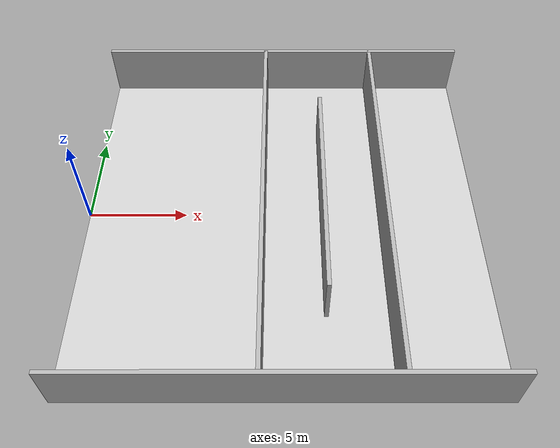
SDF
<sdf version='1.9'>
  <world name='car_world'>
    <physics name='1ms' type='ignored'>
      <max_step_size>0.001</max_step_size>
      <real_time_factor>1</real_time_factor>
      <real_time_update_rate>1000</real_time_update_rate>
    </physics>
    <plugin name='ignition::gazebo::systems::Physics' filename='libignition-gazebo-physics-system.so'/>
    <plugin name='ignition::gazebo::systems::Sensors' filename='libignition-gazebo-sensors-system.so'>
      <render_engine>ogre2</render_engine>
    </plugin>
    <plugin name='ignition::gazebo::systems::SceneBroadcaster' filename='libignition-gazebo-scene-broadcaster-system.so'/>
    <plugin name='ignition::gazebo::systems::UserCommands' filename='ignition-gazebo-user-commands-system'/>
    <gravity>0 0 -9.8</gravity>
    <magnetic_field>6e-06 2.3e-05 -4.2e-05</magnetic_field>
    <atmosphere type='adiabatic'/>
    <scene>
      <ambient>0.4 0.4 0.4 1</ambient>
      <background>0.7 0.7 0.7 1</background>
      <shadows>true</shadows>
    </scene>
    <model name='ground_plane'>
      <static>true</static>
      <link name='link'>
        <pose>10 0 0 0 -0 0</pose>
        <collision name='collision'>
          <geometry>
            <box>
              <size>20 20 0.1</size>
            </box>
          </geometry>
          <surface>
            <friction>
              <ode/>
            </friction>
            <bounce/>
            <contact/>
          </surface>
        </collision>
        <visual name='visual'>
          <geometry>
            <box>
              <size>20 20 0.1</size>
            </box>
          </geometry>
          <material>
            <ambient>0.8 0.8 0.8 1</ambient>
            <diffuse>0.8 0.8 0.8 1</diffuse>
            <specular>0.8 0.8 0.8 1</specular>
          </material>
        </visual>
        <pose>0 0 0 0 -0 0</pose>
        <inertial>
          <pose>0 0 0 0 -0 0</pose>
          <mass>1</mass>
          <inertia>
            <ixx>1</ixx>
            <ixy>0</ixy>
            <ixz>0</ixz>
            <iyy>1</iyy>
            <iyz>0</iyz>
            <izz>1</izz>
          </inertia>
        </inertial>
        <enable_wind>false</enable_wind>
      </link>
      <pose>0 0 0 0 -0 0</pose>
      <self_collide>false</self_collide>
    </model>
    <model name='wall1'>
      <pose>10 10 1.4 0 -0 0</pose>
      <link name='box_link'>
        <collision name='box_collision'>
          <geometry>
            <box>
              <size>20 0.2 2.8</size>
            </box>
          </geometry>
          <surface>
            <friction>
              <ode/>
            </friction>
            <bounce/>
            <contact/>
          </surface>
        </collision>
        <visual name='box_visual'>
          <geometry>
            <box>
              <size>20 0.2 2.8</size>
            </box>
          </geometry>
          <material>
            <ambient>0.3 0.3 0.3 1</ambient>
            <diffuse>0.7 0.7 0.7 1</diffuse>
            <specular>1 1 1 1</specular>
          </material>
        </visual>
        <pose>0 0 0 0 -0 0</pose>
        <enable_wind>false</enable_wind>
        <inertial>
          <pose>0 0 0 0 -0 0</pose>
          <mass>1</mass>
          <inertia>
            <ixx>1</ixx>
            <ixy>0</ixy>
            <ixz>0</ixz>
            <iyy>1</iyy>
            <iyz>0</iyz>
            <izz>1</izz>
          </inertia>
        </inertial>
      </link>
      <static>true</static>
      <self_collide>false</self_collide>
    </model>
    <model name='wall2'>
      <pose>10 -10 1.4 0 -0 0</pose>
      <link name='box_link'>
        <collision name='box_collision'>
          <geometry>
            <box>
              <size>20 0.2 2.8</size>
            </box>
          </geometry>
          <surface>
            <friction>
              <ode/>
            </friction>
            <bounce/>
            <contact/>
          </surface>
        </collision>
        <visual name='box_visual'>
          <geometry>
            <box>
              <size>20 0.2 2.8</size>
            </box>
          </geometry>
          <material>
            <ambient>0.3 0.3 0.3 1</ambient>
            <diffuse>0.7 0.7 0.7 1</diffuse>
            <specular>1 1 1 1</specular>
          </material>
        </visual>
        <pose>0 0 0 0 -0 0</pose>
        <enable_wind>false</enable_wind>
        <inertial>
          <pose>0 0 0 0 -0 0</pose>
          <mass>1</mass>
          <inertia>
            <ixx>1</ixx>
            <ixy>0</ixy>
            <ixz>0</ixz>
            <iyy>1</iyy>
            <iyz>0</iyz>
            <izz>1</izz>
          </inertia>
        </inertial>
      </link>
      <static>true</static>
      <self_collide>false</self_collide>
    </model>
    <model name='wall3'>
      <pose>15 0 1.4 0 -0 0</pose>
      <link name='box_link'>
        <collision name='box_collision'>
          <geometry>
            <box>
              <size>0.2 20 2.8</size>
            </box>
          </geometry>
          <surface>
            <friction>
              <ode/>
            </friction>
            <bounce/>
            <contact/>
          </surface>
        </collision>
        <visual name='box_visual'>
          <geometry>
            <box>
              <size>0.2 20 2.8</size>
            </box>
          </geometry>
          <material>
            <ambient>0.3 0.3 0.3 1</ambient>
            <diffuse>0.7 0.7 0.7 1</diffuse>
            <specular>1 1 1 1</specular>
          </material>
        </visual>
        <pose>0 0 0 0 -0 0</pose>
        <enable_wind>false</enable_wind>
        <inertial>
          <pose>0 0 0 0 -0 0</pose>
          <mass>1</mass>
          <inertia>
            <ixx>1</ixx>
            <ixy>0</ixy>
            <ixz>0</ixz>
            <iyy>1</iyy>
            <iyz>0</iyz>
            <izz>1</izz>
          </inertia>
        </inertial>
      </link>
      <static>true</static>
      <self_collide>false</self_collide>
    </model>
    <model name='wall4'>
      <pose>9 0 1.4 0 -0 0</pose>
      <link name='box_link'>
        <collision name='box_collision'>
          <geometry>
            <box>
              <size>0.2 20 2.8</size>
            </box>
          </geometry>
          <surface>
            <friction>
              <ode/>
            </friction>
            <bounce/>
            <contact/>
          </surface>
        </collision>
        <visual name='box_visual'>
          <geometry>
            <box>
              <size>0.2 20 2.8</size>
            </box>
          </geometry>
          <material>
            <ambient>0.3 0.3 0.3 1</ambient>
            <diffuse>0.7 0.7 0.7 1</diffuse>
            <specular>1 1 1 1</specular>
          </material>
        </visual>
        <pose>0 0 0 0 -0 0</pose>
        <enable_wind>false</enable_wind>
        <inertial>
          <pose>0 0 0 0 -0 0</pose>
          <mass>1</mass>
          <inertia>
            <ixx>1</ixx>
            <ixy>0</ixy>
            <ixz>0</ixz>
            <iyy>1</iyy>
            <iyz>0</iyz>
            <izz>1</izz>
          </inertia>
        </inertial>
      </link>
      <static>true</static>
      <self_collide>false</self_collide>
    </model>
    <model name='outsideS'>
      <pose>12 0 1.4 0 -0 0</pose>
      <link name='box_link'>
        <collision name='box_collision'>
          <geometry>
            <box>
              <size>0.2 12 2.8</size>
            </box>
          </geometry>
          <surface>
            <friction>
              <ode/>
            </friction>
            <bounce/>
            <contact/>
          </surface>
        </collision>
        <visual name='box_visual'>
          <geometry>
            <box>
              <size>0.2 12 2.8</size>
            </box>
          </geometry>
          <material>
            <ambient>0.3 0.3 0.3 1</ambient>
            <diffuse>0.7 0.7 0.7 1</diffuse>
            <specular>1 1 1 1</specular>
          </material>
        </visual>
        <pose>0 0 0 0 -0 0</pose>
        <enable_wind>false</enable_wind>
        <inertial>
          <pose>0 0 0 0 -0 0</pose>
          <mass>1</mass>
          <inertia>
            <ixx>1</ixx>
            <ixy>0</ixy>
            <ixz>0</ixz>
            <iyy>1</iyy>
            <iyz>0</iyz>
            <izz>1</izz>
          </inertia>
        </inertial>
      </link>
      <static>true</static>
      <self_collide>false</self_collide>
    </model>
    <light name='sun' type='directional'>
      <pose>0 0 10 0 -0 0</pose>
      <cast_shadows>true</cast_shadows>
      <intensity>1</intensity>
      <direction>-0.5 0.1 -0.9</direction>
      <diffuse>0.8 0.8 0.8 1</diffuse>
      <specular>0.2 0.2 0.2 1</specular>
      <attenuation>
        <range>1000</range>
        <linear>0.01</linear>
        <constant>0.90000000000000002</constant>
        <quadratic>0.001</quadratic>
      </attenuation>
      <spot>
        <inner_angle>0</inner_angle>
        <outer_angle>0</outer_angle>
        <falloff>0</falloff>
      </spot>
    </light>
  </world>
</sdf>
